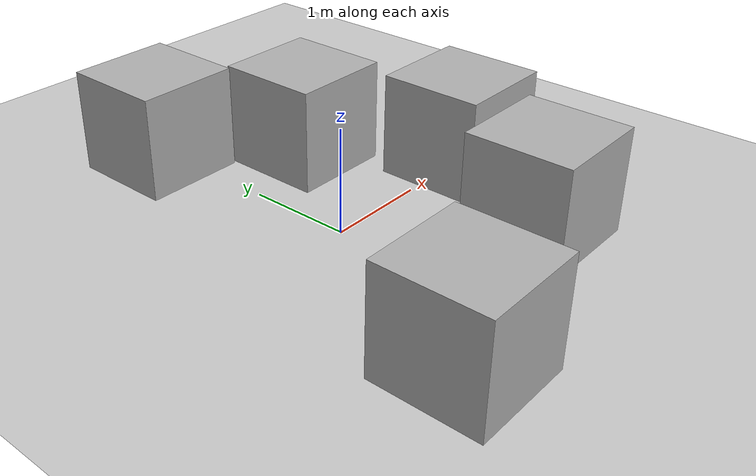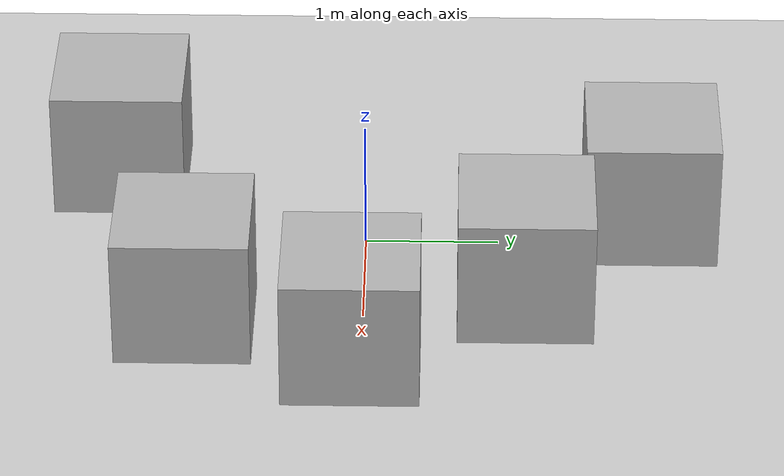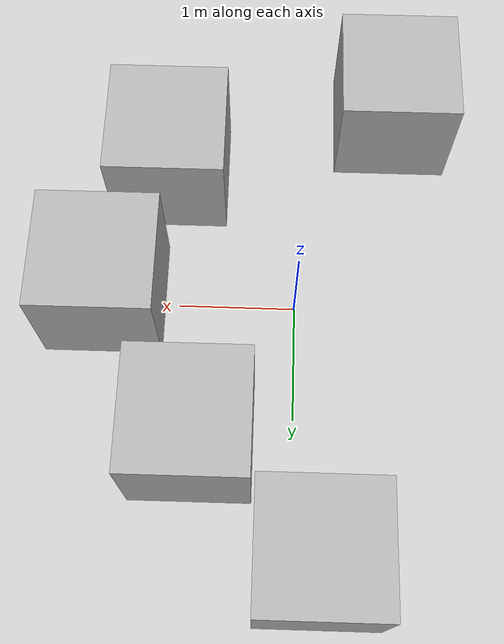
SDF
<sdf version='1.10'>
  <world name='empty'>
    <physics name='1ms' type='ignored'>
      <max_step_size>0.001</max_step_size>
      <real_time_factor>1</real_time_factor>
      <real_time_update_rate>1000</real_time_update_rate>
    </physics>
    <plugin name='gz::sim::systems::Physics' filename='gz-sim-physics-system'/>
    <plugin name='gz::sim::systems::UserCommands' filename='gz-sim-user-commands-system'/>
    <plugin name='gz::sim::systems::SceneBroadcaster' filename='gz-sim-scene-broadcaster-system'/>
    <plugin name='gz::sim::systems::Contact' filename='gz-sim-contact-system'/>
    <gravity>0 0 -9.8000000000000007</gravity>
    <magnetic_field>5.5644999999999998e-06 2.2875799999999999e-05 -4.2388400000000002e-05</magnetic_field>
    <atmosphere type='adiabatic'/>
    <scene>
      <ambient>0.400000006 0.400000006 0.400000006 1</ambient>
      <background>0.699999988 0.699999988 0.699999988 1</background>
      <shadows>true</shadows>
    </scene>
    <model name='ground_plane'>
      <static>true</static>
      <link name='link'>
        <collision name='collision'>
          <geometry>
            <plane>
              <normal>0 0 1</normal>
              <size>100 100</size>
            </plane>
          </geometry>
          <surface>
            <friction>
              <ode/>
            </friction>
            <bounce/>
            <contact/>
          </surface>
        </collision>
        <visual name='visual'>
          <geometry>
            <plane>
              <normal>0 0 1</normal>
              <size>100 100</size>
            </plane>
          </geometry>
          <material>
            <ambient>0.800000012 0.800000012 0.800000012 1</ambient>
            <diffuse>0.800000012 0.800000012 0.800000012 1</diffuse>
            <specular>0.800000012 0.800000012 0.800000012 1</specular>
          </material>
        </visual>
        <pose>0 0 0 0 0 0</pose>
        <inertial>
          <pose>0 0 0 0 0 0</pose>
          <mass>1</mass>
          <inertia>
            <ixx>1</ixx>
            <ixy>0</ixy>
            <ixz>0</ixz>
            <iyy>1</iyy>
            <iyz>0</iyz>
            <izz>1</izz>
          </inertia>
        </inertial>
        <enable_wind>false</enable_wind>
      </link>
      <pose>0 0 0 0 0 0</pose>
      <self_collide>false</self_collide>
    </model>
    <model name='box'>
      <pose>1.1233345015641238 -1.2997514876995846 0.49999999990199806 6.2287739151293738e-22 9.3279666454713669e-22 -3.6315533669320137e-22</pose>
      <link name='box_link'>
        <inertial>
          <inertia>
            <ixx>0.16666</ixx>
            <ixy>0</ixy>
            <ixz>0</ixz>
            <iyy>0.16666</iyy>
            <iyz>0</iyz>
            <izz>0.16666</izz>
          </inertia>
          <mass>1</mass>
          <pose>0 0 0 0 0 0</pose>
        </inertial>
        <collision name='box_collision'>
          <geometry>
            <box>
              <size>1 1 1</size>
            </box>
          </geometry>
          <surface>
            <friction>
              <ode/>
            </friction>
            <bounce/>
            <contact/>
          </surface>
        </collision>
        <visual name='box_visual'>
          <geometry>
            <box>
              <size>1 1 1</size>
            </box>
          </geometry>
          <material>
            <ambient>0.300000012 0.300000012 0.300000012 1</ambient>
            <diffuse>0.699999988 0.699999988 0.699999988 1</diffuse>
            <specular>1 1 1 1</specular>
          </material>
        </visual>
        <pose>0 0 0 0 0 0</pose>
        <enable_wind>false</enable_wind>
      </link>
      <static>false</static>
      <self_collide>false</self_collide>
    </model>
    <model name='box_0'>
      <pose>1.6233171502343806 -0.069798863275382428 0.49999999990199806 6.2287739151293738e-22 9.3279666454713669e-22 -3.6315533669320137e-22</pose>
      <link name='box_link'>
        <inertial>
          <inertia>
            <ixx>0.16666</ixx>
            <ixy>0</ixy>
            <ixz>0</ixz>
            <iyy>0.16666</iyy>
            <iyz>0</iyz>
            <izz>0.16666</izz>
          </inertia>
          <mass>1</mass>
          <pose>0 0 0 0 0 0</pose>
        </inertial>
        <collision name='box_collision'>
          <geometry>
            <box>
              <size>1 1 1</size>
            </box>
          </geometry>
          <surface>
            <friction>
              <ode/>
            </friction>
            <bounce/>
            <contact/>
          </surface>
        </collision>
        <visual name='box_visual'>
          <geometry>
            <box>
              <size>1 1 1</size>
            </box>
          </geometry>
          <material>
            <ambient>0.300000012 0.300000012 0.300000012 1</ambient>
            <diffuse>0.699999988 0.699999988 0.699999988 1</diffuse>
            <specular>1 1 1 1</specular>
          </material>
        </visual>
        <pose>0 0 0 0 0 0</pose>
        <enable_wind>false</enable_wind>
      </link>
      <static>false</static>
      <self_collide>false</self_collide>
    </model>
    <model name='box_1'>
      <pose>0.82424100737992867 1.1954893406518863 0.49999999990199806 6.2287739151293738e-22 9.3279666454713669e-22 -3.6315533669320137e-22</pose>
      <link name='box_link'>
        <inertial>
          <inertia>
            <ixx>0.16666</ixx>
            <ixy>0</ixy>
            <ixz>0</ixz>
            <iyy>0.16666</iyy>
            <iyz>0</iyz>
            <izz>0.16666</izz>
          </inertia>
          <mass>1</mass>
          <pose>0 0 0 0 0 0</pose>
        </inertial>
        <collision name='box_collision'>
          <geometry>
            <box>
              <size>1 1 1</size>
            </box>
          </geometry>
          <surface>
            <friction>
              <ode/>
            </friction>
            <bounce/>
            <contact/>
          </surface>
        </collision>
        <visual name='box_visual'>
          <geometry>
            <box>
              <size>1 1 1</size>
            </box>
          </geometry>
          <material>
            <ambient>0.300000012 0.300000012 0.300000012 1</ambient>
            <diffuse>0.699999988 0.699999988 0.699999988 1</diffuse>
            <specular>1 1 1 1</specular>
          </material>
        </visual>
        <pose>0 0 0 0 0 0</pose>
        <enable_wind>false</enable_wind>
      </link>
      <static>false</static>
      <self_collide>false</self_collide>
    </model>
    <model name='box_2'>
      <pose>-0.85228385399114059 -1.8929935691693112 0.49999999990199806 -2.6020270640359596e-21 1.5823252563607089e-21 -1.4428456089909881e-22</pose>
      <link name='box_link'>
        <inertial>
          <inertia>
            <ixx>0.16666</ixx>
            <ixy>0</ixy>
            <ixz>0</ixz>
            <iyy>0.16666</iyy>
            <iyz>0</iyz>
            <izz>0.16666</izz>
          </inertia>
          <mass>1</mass>
          <pose>0 0 0 0 0 0</pose>
        </inertial>
        <collision name='box_collision'>
          <geometry>
            <box>
              <size>1 1 1</size>
            </box>
          </geometry>
          <surface>
            <friction>
              <ode/>
            </friction>
            <bounce/>
            <contact/>
          </surface>
        </collision>
        <visual name='box_visual'>
          <geometry>
            <box>
              <size>1 1 1</size>
            </box>
          </geometry>
          <material>
            <ambient>0.300000012 0.300000012 0.300000012 1</ambient>
            <diffuse>0.699999988 0.699999988 0.699999988 1</diffuse>
            <specular>1 1 1 1</specular>
          </material>
        </visual>
        <pose>0 0 0 0 0 0</pose>
        <enable_wind>false</enable_wind>
      </link>
      <static>false</static>
      <self_collide>false</self_collide>
    </model>
    <model name='box_3'>
      <pose>-0.2054617631392075 2.1459307013372046 0.49999999990199806 6.2287739151293738e-22 9.3279666454713669e-22 -3.6315533669320137e-22</pose>
      <link name='box_link'>
        <inertial>
          <inertia>
            <ixx>0.16666</ixx>
            <ixy>0</ixy>
            <ixz>0</ixz>
            <iyy>0.16666</iyy>
            <iyz>0</iyz>
            <izz>0.16666</izz>
          </inertia>
          <mass>1</mass>
          <pose>0 0 0 0 0 0</pose>
        </inertial>
        <collision name='box_collision'>
          <geometry>
            <box>
              <size>1 1 1</size>
            </box>
          </geometry>
          <surface>
            <friction>
              <ode/>
            </friction>
            <bounce/>
            <contact/>
          </surface>
        </collision>
        <visual name='box_visual'>
          <geometry>
            <box>
              <size>1 1 1</size>
            </box>
          </geometry>
          <material>
            <ambient>0.300000012 0.300000012 0.300000012 1</ambient>
            <diffuse>0.699999988 0.699999988 0.699999988 1</diffuse>
            <specular>1 1 1 1</specular>
          </material>
        </visual>
        <pose>0 0 0 0 0 0</pose>
        <enable_wind>false</enable_wind>
      </link>
      <static>false</static>
      <self_collide>false</self_collide>
    </model>
    <light name='sun' type='directional'>
      <pose>0 0 10 0 0 0</pose>
      <cast_shadows>true</cast_shadows>
      <intensity>1</intensity>
      <direction>-0.5 0.10000000000000001 -0.90000000000000002</direction>
      <diffuse>0.800000012 0.800000012 0.800000012 1</diffuse>
      <specular>0.200000003 0.200000003 0.200000003 1</specular>
      <attenuation>
        <range>1000</range>
        <linear>0.01</linear>
        <constant>0.90000000000000002</constant>
        <quadratic>0.001</quadratic>
      </attenuation>
      <spot>
        <inner_angle>0</inner_angle>
        <outer_angle>0</outer_angle>
        <falloff>0</falloff>
      </spot>
    </light>
  </world>
</sdf>
